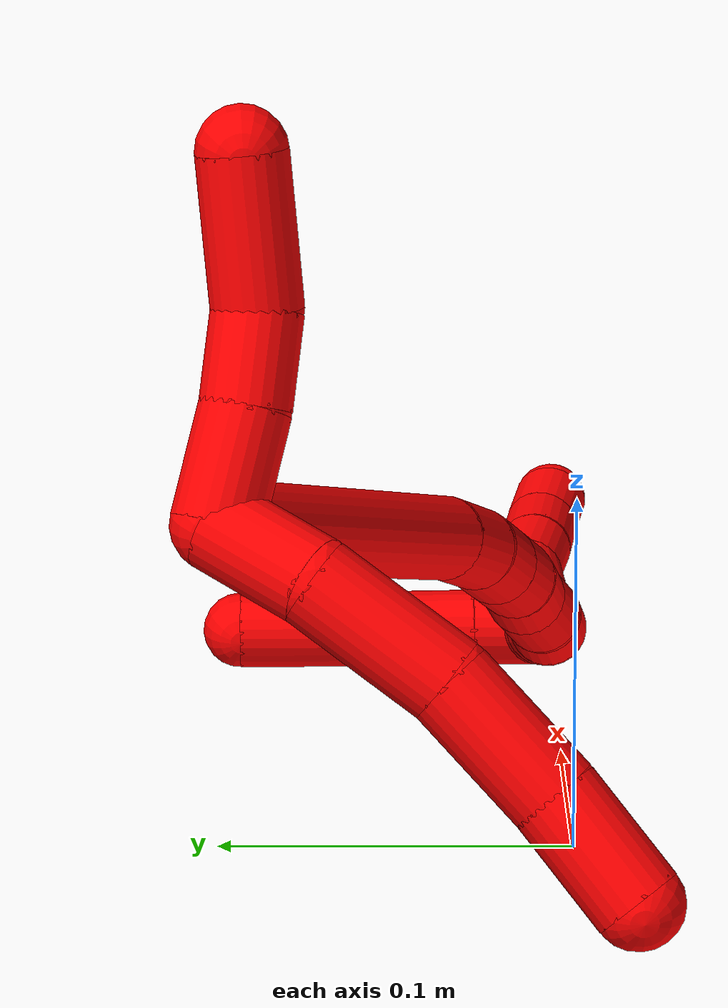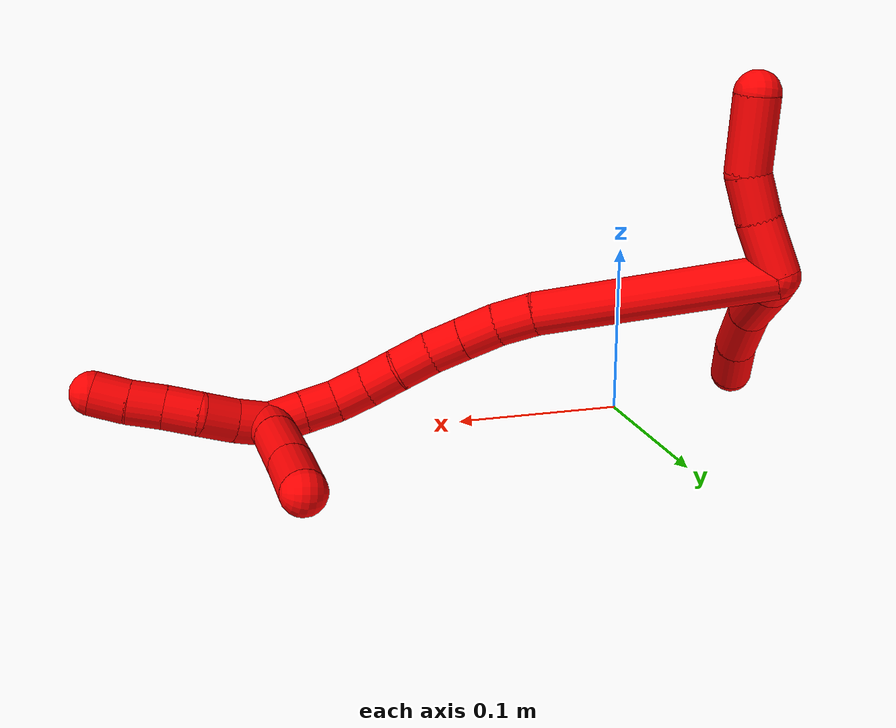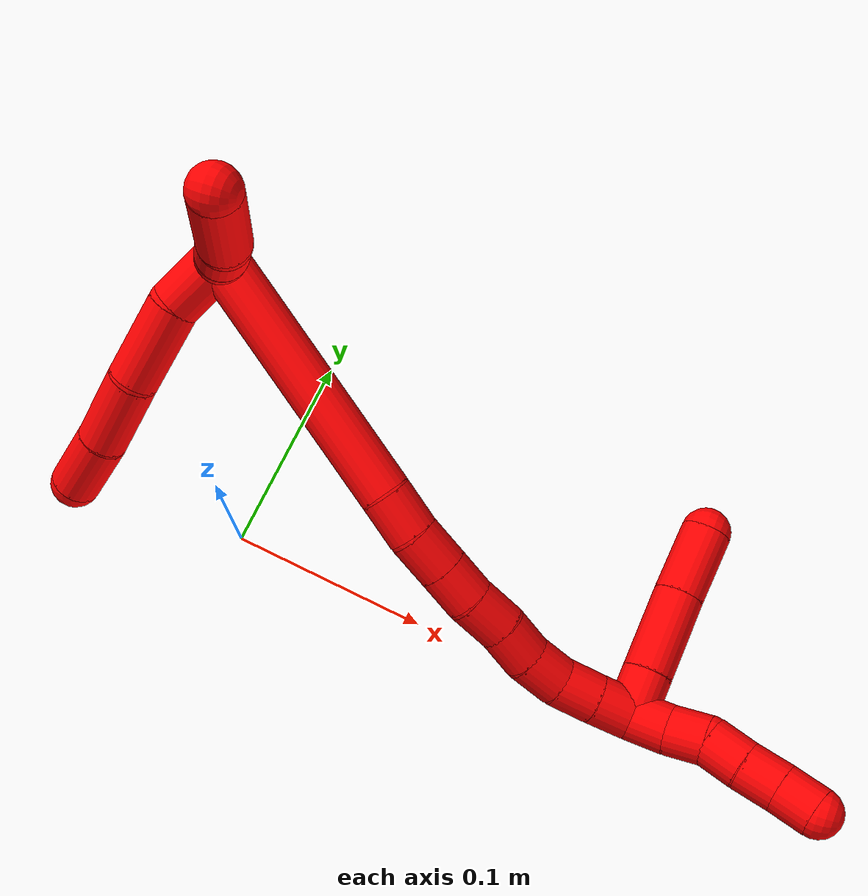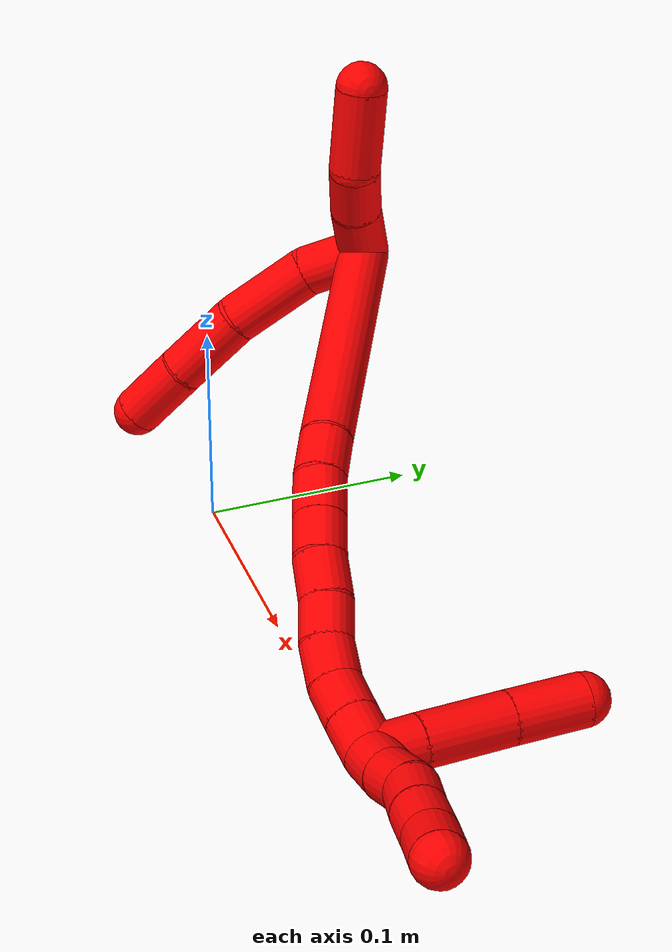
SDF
<sdf version="1.7">
 <world name="default">
  <model name="2">
   <static>0</static>
   <link name="2">
    <collision name="collision-cylinder-e_1_2_8">
     <pose>-0.006629 -0.011511 -0.008158 2.18736 -0.439203 -0.815173</pose>
     <geometry><cylinder><radius>0.0125</radius><length>0.031178</length></cylinder></geometry>
     <surface>
      <friction><ode><mu>1.16</mu><mu2>1.16</mu2><slip1>0</slip1><slip2>0</slip2></ode></friction>
      <contact><ode><kp>1e+06</kp><kd>1</kd><max_vel>0</max_vel><min_depth>0.001</min_depth></ode></contact>
     </surface>
    </collision>
    <visual name="visual-cylinder-e_1_2_8">
     <pose>-0.006629 -0.011511 -0.008158 2.18736 -0.439203 -0.815173</pose>
     <geometry><cylinder><radius>0.0125</radius><length>0.031178</length></cylinder></geometry>
     <material><ambient>1 0 0 1</ambient></material>
    </visual>
    <collision name="collision-cylinder-e_2_8_9">
     <pose>-0.019675 -0.04269 -0.02341 1.91694 -0.297857 -0.420899</pose>
     <geometry><cylinder><radius>0.0125</radius><length>0.04374</length></cylinder></geometry>
     <surface>
      <friction><ode><mu>1.16</mu><mu2>1.16</mu2><slip1>0</slip1><slip2>0</slip2></ode></friction>
      <contact><ode><kp>1e+06</kp><kd>1</kd><max_vel>0</max_vel><min_depth>0.001</min_depth></ode></contact>
     </surface>
    </collision>
    <visual name="visual-cylinder-e_2_8_9">
     <pose>-0.019675 -0.04269 -0.02341 1.91694 -0.297857 -0.420899</pose>
     <geometry><cylinder><radius>0.0125</radius><length>0.04374</length></cylinder></geometry>
     <material><ambient>1 0 0 1</ambient></material>
    </visual>
    <collision name="collision-cylinder-e_3_9_10">
     <pose>-0.028308 -0.081037 -0.037653 1.93633 -0.110259 -0.160077</pose>
     <geometry><cylinder><radius>0.0125</radius><length>0.040248</length></cylinder></geometry>
     <surface>
      <friction><ode><mu>1.16</mu><mu2>1.16</mu2><slip1>0</slip1><slip2>0</slip2></ode></friction>
      <contact><ode><kp>1e+06</kp><kd>1</kd><max_vel>0</max_vel><min_depth>0.001</min_depth></ode></contact>
     </surface>
    </collision>
    <visual name="visual-cylinder-e_3_9_10">
     <pose>-0.028308 -0.081037 -0.037653 1.93633 -0.110259 -0.160077</pose>
     <geometry><cylinder><radius>0.0125</radius><length>0.040248</length></cylinder></geometry>
     <material><ambient>1 0 0 1</ambient></material>
    </visual>
    <collision name="collision-cylinder-e_4_10_6">
     <pose>-0.031259 -0.11541 -0.052322 2.01763 -0.042279 -0.067125</pose>
     <geometry><cylinder><radius>0.0125</radius><length>0.034835</length></cylinder></geometry>
     <surface>
      <friction><ode><mu>1.16</mu><mu2>1.16</mu2><slip1>0</slip1><slip2>0</slip2></ode></friction>
      <contact><ode><kp>1e+06</kp><kd>1</kd><max_vel>0</max_vel><min_depth>0.001</min_depth></ode></contact>
     </surface>
    </collision>
    <visual name="visual-cylinder-e_4_10_6">
     <pose>-0.031259 -0.11541 -0.052322 2.01763 -0.042279 -0.067125</pose>
     <geometry><cylinder><radius>0.0125</radius><length>0.034835</length></cylinder></geometry>
     <material><ambient>1 0 0 1</ambient></material>
    </visual>
    <collision name="collision-cylinder-e_1_2_11">
     <pose>-0.011896 0.008539 0.006291 -0.935846 -0.842645 0.445445</pose>
     <geometry><cylinder><radius>0.0125</radius><length>0.031875</length></cylinder></geometry>
     <surface>
      <friction><ode><mu>1.16</mu><mu2>1.16</mu2><slip1>0</slip1><slip2>0</slip2></ode></friction>
      <contact><ode><kp>1e+06</kp><kd>1</kd><max_vel>0</max_vel><min_depth>0.001</min_depth></ode></contact>
     </surface>
    </collision>
    <visual name="visual-cylinder-e_1_2_11">
     <pose>-0.011896 0.008539 0.006291 -0.935846 -0.842645 0.445445</pose>
     <geometry><cylinder><radius>0.0125</radius><length>0.031875</length></cylinder></geometry>
     <material><ambient>1 0 0 1</ambient></material>
    </visual>
    <collision name="collision-cylinder-e_2_11_12">
     <pose>-0.032539 0.025295 0.01749 -1.03234 -0.740426 0.433568</pose>
     <geometry><cylinder><radius>0.0125</radius><length>0.025932</length></cylinder></geometry>
     <surface>
      <friction><ode><mu>1.16</mu><mu2>1.16</mu2><slip1>0</slip1><slip2>0</slip2></ode></friction>
      <contact><ode><kp>1e+06</kp><kd>1</kd><max_vel>0</max_vel><min_depth>0.001</min_depth></ode></contact>
     </surface>
    </collision>
    <visual name="visual-cylinder-e_2_11_12">
     <pose>-0.032539 0.025295 0.01749 -1.03234 -0.740426 0.433568</pose>
     <geometry><cylinder><radius>0.0125</radius><length>0.025932</length></cylinder></geometry>
     <material><ambient>1 0 0 1</ambient></material>
    </visual>
    <collision name="collision-cylinder-e_3_12_5">
     <pose>-0.052636 0.051051 0.025333 -1.405 -0.568103 0.484596</pose>
     <geometry><cylinder><radius>0.0125</radius><length>0.042193</length></cylinder></geometry>
     <surface>
      <friction><ode><mu>1.16</mu><mu2>1.16</mu2><slip1>0</slip1><slip2>0</slip2></ode></friction>
      <contact><ode><kp>1e+06</kp><kd>1</kd><max_vel>0</max_vel><min_depth>0.001</min_depth></ode></contact>
     </surface>
    </collision>
    <visual name="visual-cylinder-e_3_12_5">
     <pose>-0.052636 0.051051 0.025333 -1.405 -0.568103 0.484596</pose>
     <geometry><cylinder><radius>0.0125</radius><length>0.042193</length></cylinder></geometry>
     <material><ambient>1 0 0 1</ambient></material>
    </visual>
    <collision name="collision-cylinder-e_1_2_13">
     <pose>-0.013952 -0.039127 0.051825 0.646689 -0.21164 -0.071158</pose>
     <geometry><cylinder><radius>0.0125</radius><length>0.132837</length></cylinder></geometry>
     <surface>
      <friction><ode><mu>1.16</mu><mu2>1.16</mu2><slip1>0</slip1><slip2>0</slip2></ode></friction>
      <contact><ode><kp>1e+06</kp><kd>1</kd><max_vel>0</max_vel><min_depth>0.001</min_depth></ode></contact>
     </surface>
    </collision>
    <visual name="visual-cylinder-e_1_2_13">
     <pose>-0.013952 -0.039127 0.051825 0.646689 -0.21164 -0.071158</pose>
     <geometry><cylinder><radius>0.0125</radius><length>0.132837</length></cylinder></geometry>
     <material><ambient>1 0 0 1</ambient></material>
    </visual>
    <collision name="collision-cylinder-e_2_13_14">
     <pose>-0.029266 -0.085751 0.112018 0.730452 -0.120583 -0.046156</pose>
     <geometry><cylinder><radius>0.0125</radius><length>0.022634</length></cylinder></geometry>
     <surface>
      <friction><ode><mu>1.16</mu><mu2>1.16</mu2><slip1>0</slip1><slip2>0</slip2></ode></friction>
      <contact><ode><kp>1e+06</kp><kd>1</kd><max_vel>0</max_vel><min_depth>0.001</min_depth></ode></contact>
     </surface>
    </collision>
    <visual name="visual-cylinder-e_2_13_14">
     <pose>-0.029266 -0.085751 0.112018 0.730452 -0.120583 -0.046156</pose>
     <geometry><cylinder><radius>0.0125</radius><length>0.022634</length></cylinder></geometry>
     <material><ambient>1 0 0 1</ambient></material>
    </visual>
    <collision name="collision-cylinder-e_3_14_15">
     <pose>-0.030269 -0.100291 0.128559 0.711367 0.033175 0.012325</pose>
     <geometry><cylinder><radius>0.0125</radius><length>0.02159</length></cylinder></geometry>
     <surface>
      <friction><ode><mu>1.16</mu><mu2>1.16</mu2><slip1>0</slip1><slip2>0</slip2></ode></friction>
      <contact><ode><kp>1e+06</kp><kd>1</kd><max_vel>0</max_vel><min_depth>0.001</min_depth></ode></contact>
     </surface>
    </collision>
    <visual name="visual-cylinder-e_3_14_15">
     <pose>-0.030269 -0.100291 0.128559 0.711367 0.033175 0.012325</pose>
     <geometry><cylinder><radius>0.0125</radius><length>0.02159</length></cylinder></geometry>
     <material><ambient>1 0 0 1</ambient></material>
    </visual>
    <collision name="collision-cylinder-e_4_15_16">
     <pose>-0.02957 -0.113997 0.144348 0.718693 0.033653 0.012643</pose>
     <geometry><cylinder><radius>0.0125</radius><length>0.020249</length></cylinder></geometry>
     <surface>
      <friction><ode><mu>1.16</mu><mu2>1.16</mu2><slip1>0</slip1><slip2>0</slip2></ode></friction>
      <contact><ode><kp>1e+06</kp><kd>1</kd><max_vel>0</max_vel><min_depth>0.001</min_depth></ode></contact>
     </surface>
    </collision>
    <visual name="visual-cylinder-e_4_15_16">
     <pose>-0.02957 -0.113997 0.144348 0.718693 0.033653 0.012643</pose>
     <geometry><cylinder><radius>0.0125</radius><length>0.020249</length></cylinder></geometry>
     <material><ambient>1 0 0 1</ambient></material>
    </visual>
    <collision name="collision-cylinder-e_5_16_17">
     <pose>-0.027378 -0.127263 0.160418 0.663132 0.170869 0.058952</pose>
     <geometry><cylinder><radius>0.0125</radius><length>0.021773</length></cylinder></geometry>
     <surface>
      <friction><ode><mu>1.16</mu><mu2>1.16</mu2><slip1>0</slip1><slip2>0</slip2></ode></friction>
      <contact><ode><kp>1e+06</kp><kd>1</kd><max_vel>0</max_vel><min_depth>0.001</min_depth></ode></contact>
     </surface>
    </collision>
    <visual name="visual-cylinder-e_5_16_17">
     <pose>-0.027378 -0.127263 0.160418 0.663132 0.170869 0.058952</pose>
     <geometry><cylinder><radius>0.0125</radius><length>0.021773</length></cylinder></geometry>
     <material><ambient>1 0 0 1</ambient></material>
    </visual>
    <collision name="collision-cylinder-e_6_17_18">
     <pose>-0.024593 -0.140973 0.176032 0.781665 0.092391 0.03809</pose>
     <geometry><cylinder><radius>0.0125</radius><length>0.020261</length></cylinder></geometry>
     <surface>
      <friction><ode><mu>1.16</mu><mu2>1.16</mu2><slip1>0</slip1><slip2>0</slip2></ode></friction>
      <contact><ode><kp>1e+06</kp><kd>1</kd><max_vel>0</max_vel><min_depth>0.001</min_depth></ode></contact>
     </surface>
    </collision>
    <visual name="visual-cylinder-e_6_17_18">
     <pose>-0.024593 -0.140973 0.176032 0.781665 0.092391 0.03809</pose>
     <geometry><cylinder><radius>0.0125</radius><length>0.020261</length></cylinder></geometry>
     <material><ambient>1 0 0 1</ambient></material>
    </visual>
    <collision name="collision-cylinder-e_7_18_19">
     <pose>-0.021832 -0.153759 0.191554 0.596607 0.178694 0.055077</pose>
     <geometry><cylinder><radius>0.0125</radius><length>0.020546</length></cylinder></geometry>
     <surface>
      <friction><ode><mu>1.16</mu><mu2>1.16</mu2><slip1>0</slip1><slip2>0</slip2></ode></friction>
      <contact><ode><kp>1e+06</kp><kd>1</kd><max_vel>0</max_vel><min_depth>0.001</min_depth></ode></contact>
     </surface>
    </collision>
    <visual name="visual-cylinder-e_7_18_19">
     <pose>-0.021832 -0.153759 0.191554 0.596607 0.178694 0.055077</pose>
     <geometry><cylinder><radius>0.0125</radius><length>0.020546</length></cylinder></geometry>
     <material><ambient>1 0 0 1</ambient></material>
    </visual>
    <collision name="collision-cylinder-e_8_19_20">
     <pose>-0.017996 -0.162691 0.209177 0.337777 0.202062 0.034568</pose>
     <geometry><cylinder><radius>0.0125</radius><length>0.020037</length></cylinder></geometry>
     <surface>
      <friction><ode><mu>1.16</mu><mu2>1.16</mu2><slip1>0</slip1><slip2>0</slip2></ode></friction>
      <contact><ode><kp>1e+06</kp><kd>1</kd><max_vel>0</max_vel><min_depth>0.001</min_depth></ode></contact>
     </surface>
    </collision>
    <visual name="visual-cylinder-e_8_19_20">
     <pose>-0.017996 -0.162691 0.209177 0.337777 0.202062 0.034568</pose>
     <geometry><cylinder><radius>0.0125</radius><length>0.020037</length></cylinder></geometry>
     <material><ambient>1 0 0 1</ambient></material>
    </visual>
    <collision name="collision-cylinder-e_9_20_1">
     <pose>-0.013773 -0.168973 0.227746 0.314665 0.222179 0.035389</pose>
     <geometry><cylinder><radius>0.0125</radius><length>0.020073</length></cylinder></geometry>
     <surface>
      <friction><ode><mu>1.16</mu><mu2>1.16</mu2><slip1>0</slip1><slip2>0</slip2></ode></friction>
      <contact><ode><kp>1e+06</kp><kd>1</kd><max_vel>0</max_vel><min_depth>0.001</min_depth></ode></contact>
     </surface>
    </collision>
    <visual name="visual-cylinder-e_9_20_1">
     <pose>-0.013773 -0.168973 0.227746 0.314665 0.222179 0.035389</pose>
     <geometry><cylinder><radius>0.0125</radius><length>0.020073</length></cylinder></geometry>
     <material><ambient>1 0 0 1</ambient></material>
    </visual>
    <collision name="collision-cylinder-e_1_1_21">
     <pose>-0.012323 -0.171758 0.247023 -0.024581 -0.076147 0.000936</pose>
     <geometry><cylinder><radius>0.0125</radius><length>0.02</length></cylinder></geometry>
     <surface>
      <friction><ode><mu>1.16</mu><mu2>1.16</mu2><slip1>0</slip1><slip2>0</slip2></ode></friction>
      <contact><ode><kp>1e+06</kp><kd>1</kd><max_vel>0</max_vel><min_depth>0.001</min_depth></ode></contact>
     </surface>
    </collision>
    <visual name="visual-cylinder-e_1_1_21">
     <pose>-0.012323 -0.171758 0.247023 -0.024581 -0.076147 0.000936</pose>
     <geometry><cylinder><radius>0.0125</radius><length>0.02</length></cylinder></geometry>
     <material><ambient>1 0 0 1</ambient></material>
    </visual>
    <collision name="collision-cylinder-e_2_21_22">
     <pose>-0.013889 -0.169868 0.266822 -0.165794 -0.080679 0.006707</pose>
     <geometry><cylinder><radius>0.0125</radius><length>0.02</length></cylinder></geometry>
     <surface>
      <friction><ode><mu>1.16</mu><mu2>1.16</mu2><slip1>0</slip1><slip2>0</slip2></ode></friction>
      <contact><ode><kp>1e+06</kp><kd>1</kd><max_vel>0</max_vel><min_depth>0.001</min_depth></ode></contact>
     </surface>
    </collision>
    <visual name="visual-cylinder-e_2_21_22">
     <pose>-0.013889 -0.169868 0.266822 -0.165794 -0.080679 0.006707</pose>
     <geometry><cylinder><radius>0.0125</radius><length>0.02</length></cylinder></geometry>
     <material><ambient>1 0 0 1</ambient></material>
    </visual>
    <collision name="collision-cylinder-e_3_22_23">
     <pose>-0.017457 -0.169362 0.286196 0.118805 -0.279809 -0.01675</pose>
     <geometry><cylinder><radius>0.0125</radius><length>0.02</length></cylinder></geometry>
     <surface>
      <friction><ode><mu>1.16</mu><mu2>1.16</mu2><slip1>0</slip1><slip2>0</slip2></ode></friction>
      <contact><ode><kp>1e+06</kp><kd>1</kd><max_vel>0</max_vel><min_depth>0.001</min_depth></ode></contact>
     </surface>
    </collision>
    <visual name="visual-cylinder-e_3_22_23">
     <pose>-0.017457 -0.169362 0.286196 0.118805 -0.279809 -0.01675</pose>
     <geometry><cylinder><radius>0.0125</radius><length>0.02</length></cylinder></geometry>
     <material><ambient>1 0 0 1</ambient></material>
    </visual>
    <collision name="collision-cylinder-e_4_23_24">
     <pose>-0.022275 -0.171446 0.30548 0.096628 -0.207142 -0.010051</pose>
     <geometry><cylinder><radius>0.0125</radius><length>0.02</length></cylinder></geometry>
     <surface>
      <friction><ode><mu>1.16</mu><mu2>1.16</mu2><slip1>0</slip1><slip2>0</slip2></ode></friction>
      <contact><ode><kp>1e+06</kp><kd>1</kd><max_vel>0</max_vel><min_depth>0.001</min_depth></ode></contact>
     </surface>
    </collision>
    <visual name="visual-cylinder-e_4_23_24">
     <pose>-0.022275 -0.171446 0.30548 0.096628 -0.207142 -0.010051</pose>
     <geometry><cylinder><radius>0.0125</radius><length>0.02</length></cylinder></geometry>
     <material><ambient>1 0 0 1</ambient></material>
    </visual>
    <collision name="collision-cylinder-e_5_24_4">
     <pose>-0.027314 -0.17301 0.324746 0.064975 -0.30284 -0.009918</pose>
     <geometry><cylinder><radius>0.0125</radius><length>0.02</length></cylinder></geometry>
     <surface>
      <friction><ode><mu>1.16</mu><mu2>1.16</mu2><slip1>0</slip1><slip2>0</slip2></ode></friction>
      <contact><ode><kp>1e+06</kp><kd>1</kd><max_vel>0</max_vel><min_depth>0.001</min_depth></ode></contact>
     </surface>
    </collision>
    <visual name="visual-cylinder-e_5_24_4">
     <pose>-0.027314 -0.17301 0.324746 0.064975 -0.30284 -0.009918</pose>
     <geometry><cylinder><radius>0.0125</radius><length>0.02</length></cylinder></geometry>
     <material><ambient>1 0 0 1</ambient></material>
    </visual>
    <collision name="collision-cylinder-e_1_1_25">
     <pose>-0.002937 -0.16509 0.237437 -1.51572 0.894368 -0.852139</pose>
     <geometry><cylinder><radius>0.0125</radius><length>0.022121</length></cylinder></geometry>
     <surface>
      <friction><ode><mu>1.16</mu><mu2>1.16</mu2><slip1>0</slip1><slip2>0</slip2></ode></friction>
      <contact><ode><kp>1e+06</kp><kd>1</kd><max_vel>0</max_vel><min_depth>0.001</min_depth></ode></contact>
     </surface>
    </collision>
    <visual name="visual-cylinder-e_1_1_25">
     <pose>-0.002937 -0.16509 0.237437 -1.51572 0.894368 -0.852139</pose>
     <geometry><cylinder><radius>0.0125</radius><length>0.022121</length></cylinder></geometry>
     <material><ambient>1 0 0 1</ambient></material>
    </visual>
    <collision name="collision-cylinder-e_2_25_26">
     <pose>0.022467 -0.145419 0.238565 -1.51229 0.919893 -0.874158</pose>
     <geometry><cylinder><radius>0.0125</radius><length>0.042181</length></cylinder></geometry>
     <surface>
      <friction><ode><mu>1.16</mu><mu2>1.16</mu2><slip1>0</slip1><slip2>0</slip2></ode></friction>
      <contact><ode><kp>1e+06</kp><kd>1</kd><max_vel>0</max_vel><min_depth>0.001</min_depth></ode></contact>
     </surface>
    </collision>
    <visual name="visual-cylinder-e_2_25_26">
     <pose>0.022467 -0.145419 0.238565 -1.51229 0.919893 -0.874158</pose>
     <geometry><cylinder><radius>0.0125</radius><length>0.042181</length></cylinder></geometry>
     <material><ambient>1 0 0 1</ambient></material>
    </visual>
    <collision name="collision-cylinder-e_3_26_3">
     <pose>0.053381 -0.121821 0.240418 -1.46911 0.914017 -0.835888</pose>
     <geometry><cylinder><radius>0.0125</radius><length>0.035698</length></cylinder></geometry>
     <surface>
      <friction><ode><mu>1.16</mu><mu2>1.16</mu2><slip1>0</slip1><slip2>0</slip2></ode></friction>
      <contact><ode><kp>1e+06</kp><kd>1</kd><max_vel>0</max_vel><min_depth>0.001</min_depth></ode></contact>
     </surface>
    </collision>
    <visual name="visual-cylinder-e_3_26_3">
     <pose>0.053381 -0.121821 0.240418 -1.46911 0.914017 -0.835888</pose>
     <geometry><cylinder><radius>0.0125</radius><length>0.035698</length></cylinder></geometry>
     <material><ambient>1 0 0 1</ambient></material>
    </visual>
    <collision name="collision-sphere-3">
     <pose>0.067517 -0.110979 0.241525 0 -0 0</pose>
     <geometry><sphere><radius>0.0125</radius></sphere></geometry>
     <surface>
      <friction><ode><mu>1.16</mu><mu2>1.16</mu2><slip1>0</slip1><slip2>0</slip2></ode></friction>
      <contact><ode><kp>1e+06</kp><kd>1</kd><max_vel>0</max_vel><min_depth>0.001</min_depth></ode></contact>
     </surface>
    </collision>
    <visual name="visual-sphere-3">
     <pose>0.067517 -0.110979 0.241525 0 -0 0</pose>
     <geometry><sphere><radius>0.0125</radius></sphere></geometry>
     <material><ambient>1 0 0 1</ambient></material>
    </visual>
    <collision name="collision-sphere-26">
     <pose>0.039245 -0.132662 0.239312 0 -0 0</pose>
     <geometry><sphere><radius>0.0125</radius></sphere></geometry>
     <surface>
      <friction><ode><mu>1.16</mu><mu2>1.16</mu2><slip1>0</slip1><slip2>0</slip2></ode></friction>
      <contact><ode><kp>1e+06</kp><kd>1</kd><max_vel>0</max_vel><min_depth>0.001</min_depth></ode></contact>
     </surface>
    </collision>
    <visual name="visual-sphere-26">
     <pose>0.039245 -0.132662 0.239312 0 -0 0</pose>
     <geometry><sphere><radius>0.0125</radius></sphere></geometry>
     <material><ambient>1 0 0 1</ambient></material>
    </visual>
    <collision name="collision-sphere-25">
     <pose>0.005688 -0.158176 0.237818 0 -0 0</pose>
     <geometry><sphere><radius>0.0125</radius></sphere></geometry>
     <surface>
      <friction><ode><mu>1.16</mu><mu2>1.16</mu2><slip1>0</slip1><slip2>0</slip2></ode></friction>
      <contact><ode><kp>1e+06</kp><kd>1</kd><max_vel>0</max_vel><min_depth>0.001</min_depth></ode></contact>
     </surface>
    </collision>
    <visual name="visual-sphere-25">
     <pose>0.005688 -0.158176 0.237818 0 -0 0</pose>
     <geometry><sphere><radius>0.0125</radius></sphere></geometry>
     <material><ambient>1 0 0 1</ambient></material>
    </visual>
    <collision name="collision-sphere-4">
     <pose>-0.030296 -0.173629 0.33427 0 -0 0</pose>
     <geometry><sphere><radius>0.0125</radius></sphere></geometry>
     <surface>
      <friction><ode><mu>1.16</mu><mu2>1.16</mu2><slip1>0</slip1><slip2>0</slip2></ode></friction>
      <contact><ode><kp>1e+06</kp><kd>1</kd><max_vel>0</max_vel><min_depth>0.001</min_depth></ode></contact>
     </surface>
    </collision>
    <visual name="visual-sphere-4">
     <pose>-0.030296 -0.173629 0.33427 0 -0 0</pose>
     <geometry><sphere><radius>0.0125</radius></sphere></geometry>
     <material><ambient>1 0 0 1</ambient></material>
    </visual>
    <collision name="collision-sphere-24">
     <pose>-0.024332 -0.17239 0.315221 0 -0 0</pose>
     <geometry><sphere><radius>0.0125</radius></sphere></geometry>
     <surface>
      <friction><ode><mu>1.16</mu><mu2>1.16</mu2><slip1>0</slip1><slip2>0</slip2></ode></friction>
      <contact><ode><kp>1e+06</kp><kd>1</kd><max_vel>0</max_vel><min_depth>0.001</min_depth></ode></contact>
     </surface>
    </collision>
    <visual name="visual-sphere-24">
     <pose>-0.024332 -0.17239 0.315221 0 -0 0</pose>
     <geometry><sphere><radius>0.0125</radius></sphere></geometry>
     <material><ambient>1 0 0 1</ambient></material>
    </visual>
    <collision name="collision-sphere-23">
     <pose>-0.020219 -0.170502 0.29574 0 -0 0</pose>
     <geometry><sphere><radius>0.0125</radius></sphere></geometry>
     <surface>
      <friction><ode><mu>1.16</mu><mu2>1.16</mu2><slip1>0</slip1><slip2>0</slip2></ode></friction>
      <contact><ode><kp>1e+06</kp><kd>1</kd><max_vel>0</max_vel><min_depth>0.001</min_depth></ode></contact>
     </surface>
    </collision>
    <visual name="visual-sphere-23">
     <pose>-0.020219 -0.170502 0.29574 0 -0 0</pose>
     <geometry><sphere><radius>0.0125</radius></sphere></geometry>
     <material><ambient>1 0 0 1</ambient></material>
    </visual>
    <collision name="collision-sphere-22">
     <pose>-0.014695 -0.168223 0.276653 0 -0 0</pose>
     <geometry><sphere><radius>0.0125</radius></sphere></geometry>
     <surface>
      <friction><ode><mu>1.16</mu><mu2>1.16</mu2><slip1>0</slip1><slip2>0</slip2></ode></friction>
      <contact><ode><kp>1e+06</kp><kd>1</kd><max_vel>0</max_vel><min_depth>0.001</min_depth></ode></contact>
     </surface>
    </collision>
    <visual name="visual-sphere-22">
     <pose>-0.014695 -0.168223 0.276653 0 -0 0</pose>
     <geometry><sphere><radius>0.0125</radius></sphere></geometry>
     <material><ambient>1 0 0 1</ambient></material>
    </visual>
    <collision name="collision-sphere-21">
     <pose>-0.013083 -0.171513 0.256991 0 -0 0</pose>
     <geometry><sphere><radius>0.0125</radius></sphere></geometry>
     <surface>
      <friction><ode><mu>1.16</mu><mu2>1.16</mu2><slip1>0</slip1><slip2>0</slip2></ode></friction>
      <contact><ode><kp>1e+06</kp><kd>1</kd><max_vel>0</max_vel><min_depth>0.001</min_depth></ode></contact>
     </surface>
    </collision>
    <visual name="visual-sphere-21">
     <pose>-0.013083 -0.171513 0.256991 0 -0 0</pose>
     <geometry><sphere><radius>0.0125</radius></sphere></geometry>
     <material><ambient>1 0 0 1</ambient></material>
    </visual>
    <collision name="collision-sphere-1">
     <pose>-0.011562 -0.172003 0.237055 0 -0 0</pose>
     <geometry><sphere><radius>0.0125</radius></sphere></geometry>
     <surface>
      <friction><ode><mu>1.16</mu><mu2>1.16</mu2><slip1>0</slip1><slip2>0</slip2></ode></friction>
      <contact><ode><kp>1e+06</kp><kd>1</kd><max_vel>0</max_vel><min_depth>0.001</min_depth></ode></contact>
     </surface>
    </collision>
    <visual name="visual-sphere-1">
     <pose>-0.011562 -0.172003 0.237055 0 -0 0</pose>
     <geometry><sphere><radius>0.0125</radius></sphere></geometry>
     <material><ambient>1 0 0 1</ambient></material>
    </visual>
    <collision name="collision-sphere-11">
     <pose>-0.023792 0.017078 0.012582 0 -0 0</pose>
     <geometry><sphere><radius>0.0125</radius></sphere></geometry>
     <surface>
      <friction><ode><mu>1.16</mu><mu2>1.16</mu2><slip1>0</slip1><slip2>0</slip2></ode></friction>
      <contact><ode><kp>1e+06</kp><kd>1</kd><max_vel>0</max_vel><min_depth>0.001</min_depth></ode></contact>
     </surface>
    </collision>
    <visual name="visual-sphere-11">
     <pose>-0.023792 0.017078 0.012582 0 -0 0</pose>
     <geometry><sphere><radius>0.0125</radius></sphere></geometry>
     <material><ambient>1 0 0 1</ambient></material>
    </visual>
    <collision name="collision-sphere-6">
     <pose>-0.031995 -0.131104 -0.059841 0 -0 0</pose>
     <geometry><sphere><radius>0.0125</radius></sphere></geometry>
     <surface>
      <friction><ode><mu>1.16</mu><mu2>1.16</mu2><slip1>0</slip1><slip2>0</slip2></ode></friction>
      <contact><ode><kp>1e+06</kp><kd>1</kd><max_vel>0</max_vel><min_depth>0.001</min_depth></ode></contact>
     </surface>
    </collision>
    <visual name="visual-sphere-6">
     <pose>-0.031995 -0.131104 -0.059841 0 -0 0</pose>
     <geometry><sphere><radius>0.0125</radius></sphere></geometry>
     <material><ambient>1 0 0 1</ambient></material>
    </visual>
    <collision name="collision-sphere-10">
     <pose>-0.030522 -0.099717 -0.044802 0 -0 0</pose>
     <geometry><sphere><radius>0.0125</radius></sphere></geometry>
     <surface>
      <friction><ode><mu>1.16</mu><mu2>1.16</mu2><slip1>0</slip1><slip2>0</slip2></ode></friction>
      <contact><ode><kp>1e+06</kp><kd>1</kd><max_vel>0</max_vel><min_depth>0.001</min_depth></ode></contact>
     </surface>
    </collision>
    <visual name="visual-sphere-10">
     <pose>-0.030522 -0.099717 -0.044802 0 -0 0</pose>
     <geometry><sphere><radius>0.0125</radius></sphere></geometry>
     <material><ambient>1 0 0 1</ambient></material>
    </visual>
    <collision name="collision-sphere-9">
     <pose>-0.026094 -0.062356 -0.030503 0 -0 0</pose>
     <geometry><sphere><radius>0.0125</radius></sphere></geometry>
     <surface>
      <friction><ode><mu>1.16</mu><mu2>1.16</mu2><slip1>0</slip1><slip2>0</slip2></ode></friction>
      <contact><ode><kp>1e+06</kp><kd>1</kd><max_vel>0</max_vel><min_depth>0.001</min_depth></ode></contact>
     </surface>
    </collision>
    <visual name="visual-sphere-9">
     <pose>-0.026094 -0.062356 -0.030503 0 -0 0</pose>
     <geometry><sphere><radius>0.0125</radius></sphere></geometry>
     <material><ambient>1 0 0 1</ambient></material>
    </visual>
    <collision name="collision-sphere-2">
     <geometry><sphere><radius>0.0125</radius></sphere></geometry>
     <surface>
      <friction><ode><mu>1.16</mu><mu2>1.16</mu2><slip1>0</slip1><slip2>0</slip2></ode></friction>
      <contact><ode><kp>1e+06</kp><kd>1</kd><max_vel>0</max_vel><min_depth>0.001</min_depth></ode></contact>
     </surface>
    </collision>
    <visual name="visual-sphere-2">
     <geometry><sphere><radius>0.0125</radius></sphere></geometry>
     <material><ambient>1 0 0 1</ambient></material>
    </visual>
    <collision name="collision-sphere-19">
     <pose>-0.020006 -0.159439 0.199917 0 -0 0</pose>
     <geometry><sphere><radius>0.0125</radius></sphere></geometry>
     <surface>
      <friction><ode><mu>1.16</mu><mu2>1.16</mu2><slip1>0</slip1><slip2>0</slip2></ode></friction>
      <contact><ode><kp>1e+06</kp><kd>1</kd><max_vel>0</max_vel><min_depth>0.001</min_depth></ode></contact>
     </surface>
    </collision>
    <visual name="visual-sphere-19">
     <pose>-0.020006 -0.159439 0.199917 0 -0 0</pose>
     <geometry><sphere><radius>0.0125</radius></sphere></geometry>
     <material><ambient>1 0 0 1</ambient></material>
    </visual>
    <collision name="collision-sphere-8">
     <pose>-0.013257 -0.023023 -0.016317 0 -0 0</pose>
     <geometry><sphere><radius>0.0125</radius></sphere></geometry>
     <surface>
      <friction><ode><mu>1.16</mu><mu2>1.16</mu2><slip1>0</slip1><slip2>0</slip2></ode></friction>
      <contact><ode><kp>1e+06</kp><kd>1</kd><max_vel>0</max_vel><min_depth>0.001</min_depth></ode></contact>
     </surface>
    </collision>
    <visual name="visual-sphere-8">
     <pose>-0.013257 -0.023023 -0.016317 0 -0 0</pose>
     <geometry><sphere><radius>0.0125</radius></sphere></geometry>
     <material><ambient>1 0 0 1</ambient></material>
    </visual>
    <collision name="collision-sphere-12">
     <pose>-0.041286 0.033512 0.022399 0 -0 0</pose>
     <geometry><sphere><radius>0.0125</radius></sphere></geometry>
     <surface>
      <friction><ode><mu>1.16</mu><mu2>1.16</mu2><slip1>0</slip1><slip2>0</slip2></ode></friction>
      <contact><ode><kp>1e+06</kp><kd>1</kd><max_vel>0</max_vel><min_depth>0.001</min_depth></ode></contact>
     </surface>
    </collision>
    <visual name="visual-sphere-12">
     <pose>-0.041286 0.033512 0.022399 0 -0 0</pose>
     <geometry><sphere><radius>0.0125</radius></sphere></geometry>
     <material><ambient>1 0 0 1</ambient></material>
    </visual>
    <collision name="collision-sphere-5">
     <pose>-0.063987 0.06859 0.028268 0 -0 0</pose>
     <geometry><sphere><radius>0.0125</radius></sphere></geometry>
     <surface>
      <friction><ode><mu>1.16</mu><mu2>1.16</mu2><slip1>0</slip1><slip2>0</slip2></ode></friction>
      <contact><ode><kp>1e+06</kp><kd>1</kd><max_vel>0</max_vel><min_depth>0.001</min_depth></ode></contact>
     </surface>
    </collision>
    <visual name="visual-sphere-5">
     <pose>-0.063987 0.06859 0.028268 0 -0 0</pose>
     <geometry><sphere><radius>0.0125</radius></sphere></geometry>
     <material><ambient>1 0 0 1</ambient></material>
    </visual>
    <collision name="collision-sphere-13">
     <pose>-0.027904 -0.078255 0.10365 0 -0 0</pose>
     <geometry><sphere><radius>0.0125</radius></sphere></geometry>
     <surface>
      <friction><ode><mu>1.16</mu><mu2>1.16</mu2><slip1>0</slip1><slip2>0</slip2></ode></friction>
      <contact><ode><kp>1e+06</kp><kd>1</kd><max_vel>0</max_vel><min_depth>0.001</min_depth></ode></contact>
     </surface>
    </collision>
    <visual name="visual-sphere-13">
     <pose>-0.027904 -0.078255 0.10365 0 -0 0</pose>
     <geometry><sphere><radius>0.0125</radius></sphere></geometry>
     <material><ambient>1 0 0 1</ambient></material>
    </visual>
    <collision name="collision-sphere-14">
     <pose>-0.030627 -0.093247 0.120387 0 -0 0</pose>
     <geometry><sphere><radius>0.0125</radius></sphere></geometry>
     <surface>
      <friction><ode><mu>1.16</mu><mu2>1.16</mu2><slip1>0</slip1><slip2>0</slip2></ode></friction>
      <contact><ode><kp>1e+06</kp><kd>1</kd><max_vel>0</max_vel><min_depth>0.001</min_depth></ode></contact>
     </surface>
    </collision>
    <visual name="visual-sphere-14">
     <pose>-0.030627 -0.093247 0.120387 0 -0 0</pose>
     <geometry><sphere><radius>0.0125</radius></sphere></geometry>
     <material><ambient>1 0 0 1</ambient></material>
    </visual>
    <collision name="collision-sphere-15">
     <pose>-0.029911 -0.107334 0.136731 0 -0 0</pose>
     <geometry><sphere><radius>0.0125</radius></sphere></geometry>
     <surface>
      <friction><ode><mu>1.16</mu><mu2>1.16</mu2><slip1>0</slip1><slip2>0</slip2></ode></friction>
      <contact><ode><kp>1e+06</kp><kd>1</kd><max_vel>0</max_vel><min_depth>0.001</min_depth></ode></contact>
     </surface>
    </collision>
    <visual name="visual-sphere-15">
     <pose>-0.029911 -0.107334 0.136731 0 -0 0</pose>
     <geometry><sphere><radius>0.0125</radius></sphere></geometry>
     <material><ambient>1 0 0 1</ambient></material>
    </visual>
    <collision name="collision-sphere-16">
     <pose>-0.02923 -0.120659 0.151964 0 -0 0</pose>
     <geometry><sphere><radius>0.0125</radius></sphere></geometry>
     <surface>
      <friction><ode><mu>1.16</mu><mu2>1.16</mu2><slip1>0</slip1><slip2>0</slip2></ode></friction>
      <contact><ode><kp>1e+06</kp><kd>1</kd><max_vel>0</max_vel><min_depth>0.001</min_depth></ode></contact>
     </surface>
    </collision>
    <visual name="visual-sphere-16">
     <pose>-0.02923 -0.120659 0.151964 0 -0 0</pose>
     <geometry><sphere><radius>0.0125</radius></sphere></geometry>
     <material><ambient>1 0 0 1</ambient></material>
    </visual>
    <collision name="collision-sphere-17">
     <pose>-0.025527 -0.133867 0.168872 0 -0 0</pose>
     <geometry><sphere><radius>0.0125</radius></sphere></geometry>
     <surface>
      <friction><ode><mu>1.16</mu><mu2>1.16</mu2><slip1>0</slip1><slip2>0</slip2></ode></friction>
      <contact><ode><kp>1e+06</kp><kd>1</kd><max_vel>0</max_vel><min_depth>0.001</min_depth></ode></contact>
     </surface>
    </collision>
    <visual name="visual-sphere-17">
     <pose>-0.025527 -0.133867 0.168872 0 -0 0</pose>
     <geometry><sphere><radius>0.0125</radius></sphere></geometry>
     <material><ambient>1 0 0 1</ambient></material>
    </visual>
    <collision name="collision-sphere-18">
     <pose>-0.023658 -0.148079 0.183191 0 -0 0</pose>
     <geometry><sphere><radius>0.0125</radius></sphere></geometry>
     <surface>
      <friction><ode><mu>1.16</mu><mu2>1.16</mu2><slip1>0</slip1><slip2>0</slip2></ode></friction>
      <contact><ode><kp>1e+06</kp><kd>1</kd><max_vel>0</max_vel><min_depth>0.001</min_depth></ode></contact>
     </surface>
    </collision>
    <visual name="visual-sphere-18">
     <pose>-0.023658 -0.148079 0.183191 0 -0 0</pose>
     <geometry><sphere><radius>0.0125</radius></sphere></geometry>
     <material><ambient>1 0 0 1</ambient></material>
    </visual>
    <collision name="collision-sphere-20">
     <pose>-0.015985 -0.165943 0.218437 0 -0 0</pose>
     <geometry><sphere><radius>0.0125</radius></sphere></geometry>
     <surface>
      <friction><ode><mu>1.16</mu><mu2>1.16</mu2><slip1>0</slip1><slip2>0</slip2></ode></friction>
      <contact><ode><kp>1e+06</kp><kd>1</kd><max_vel>0</max_vel><min_depth>0.001</min_depth></ode></contact>
     </surface>
    </collision>
    <visual name="visual-sphere-20">
     <pose>-0.015985 -0.165943 0.218437 0 -0 0</pose>
     <geometry><sphere><radius>0.0125</radius></sphere></geometry>
     <material><ambient>1 0 0 1</ambient></material>
    </visual>
    <inertial>
     <pose>-0.015686 -0.086292 0.112648 0 -0 0</pose>
     <mass>0.75</mass>
     <inertia>
      <ixx>0.000226</ixx>
      <ixy>0</ixy>
      <ixz>0</ixz>
      <iyy>0.000153</iyy>
      <iyz>0</iyz>
      <izz>0.000196</izz>
     </inertia>
    </inertial>
   </link>
   <pose>-0.048644 0.096532 0.102959 1.38213 0.655683 1.54182</pose>
  </model>
 </world>
</sdf>
